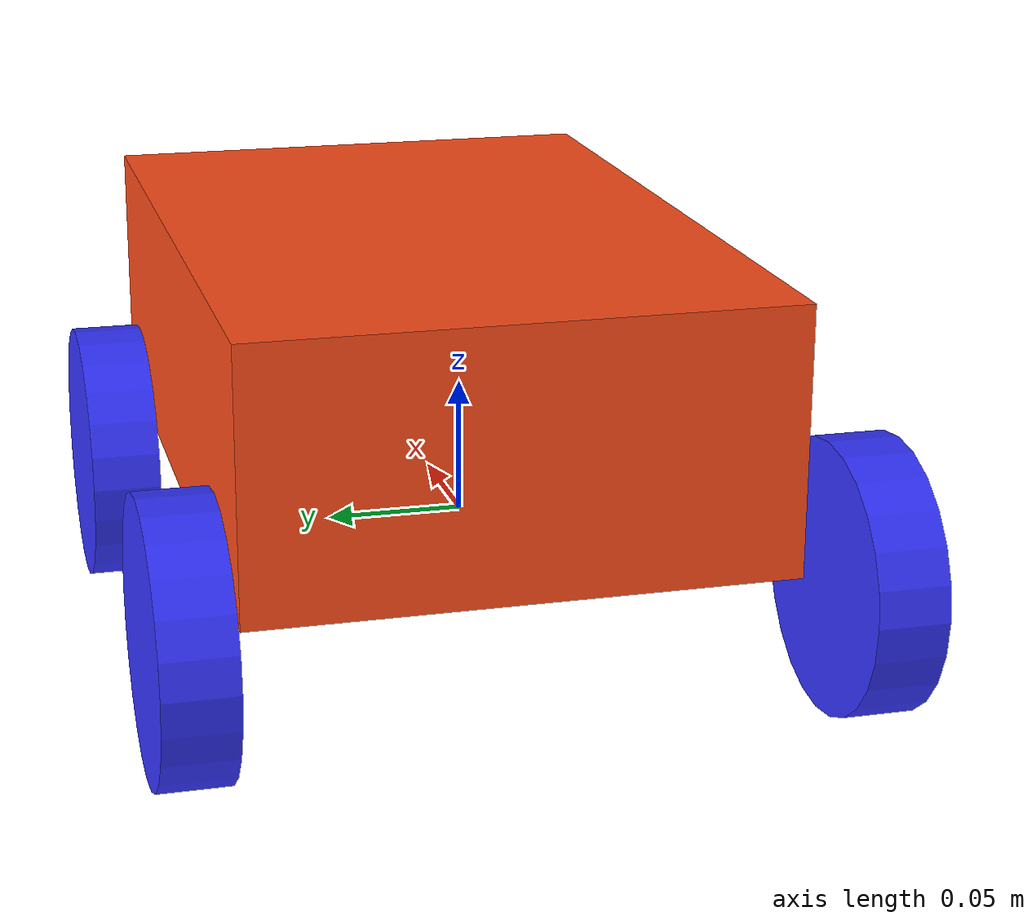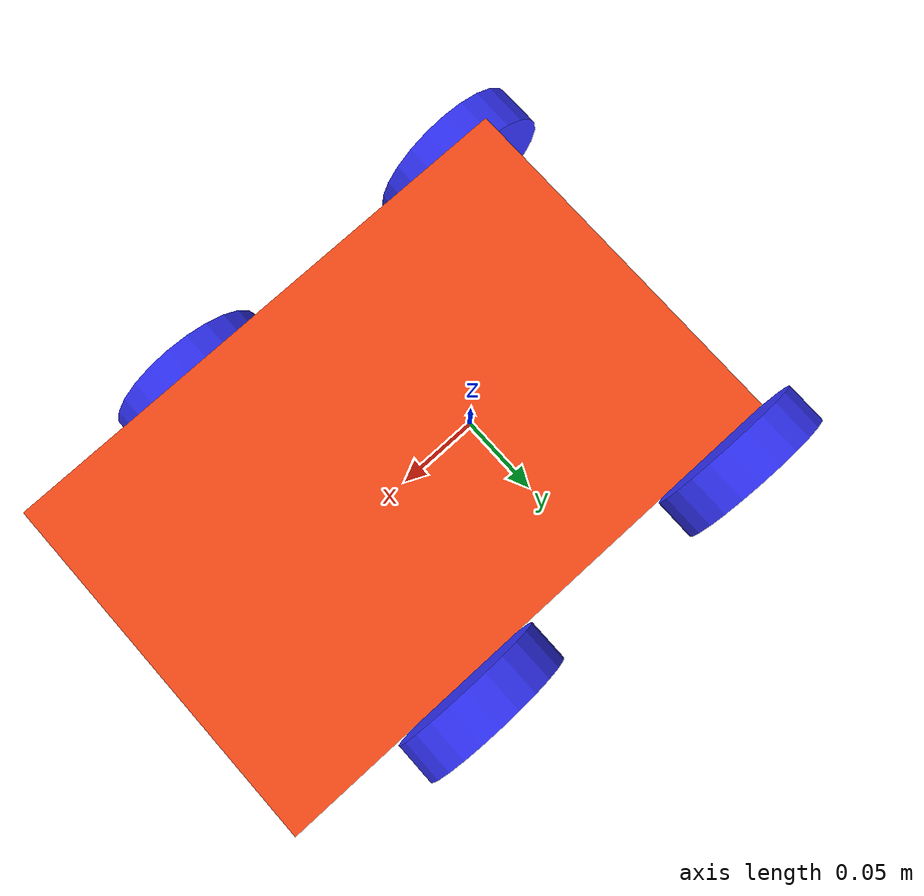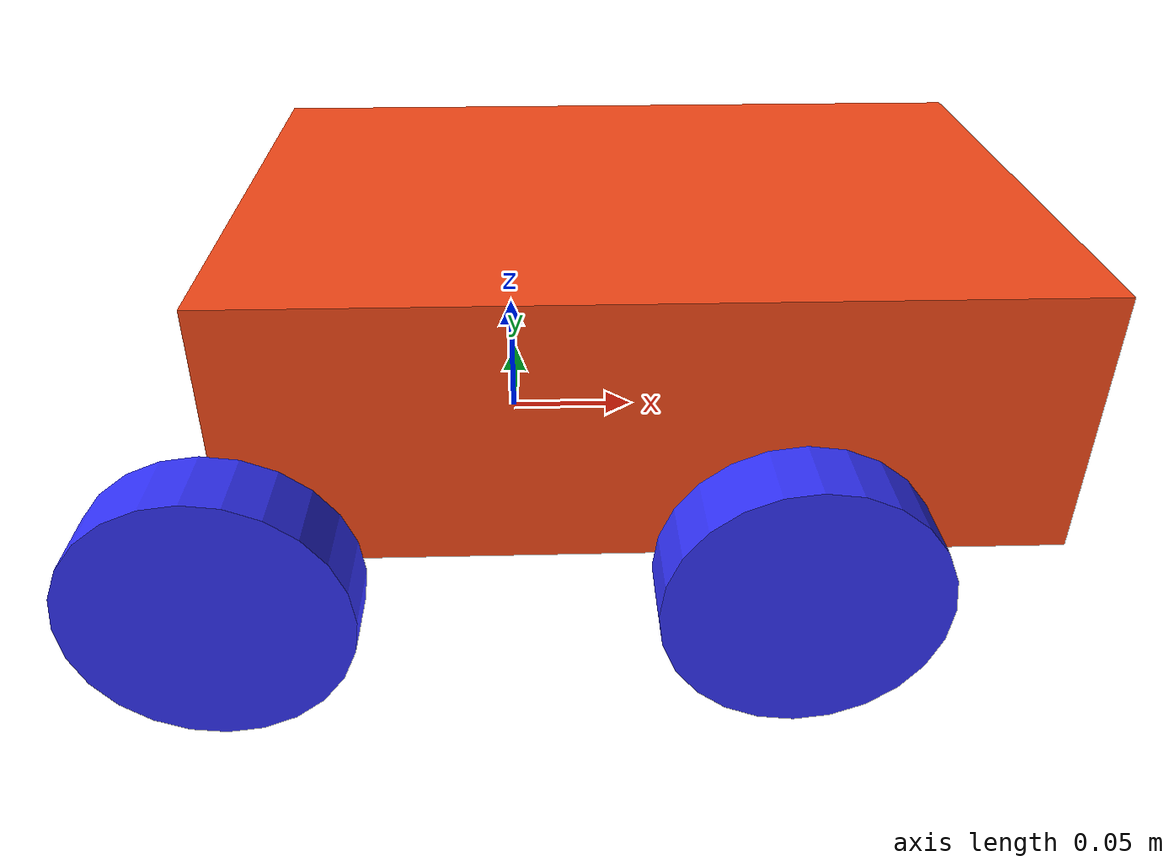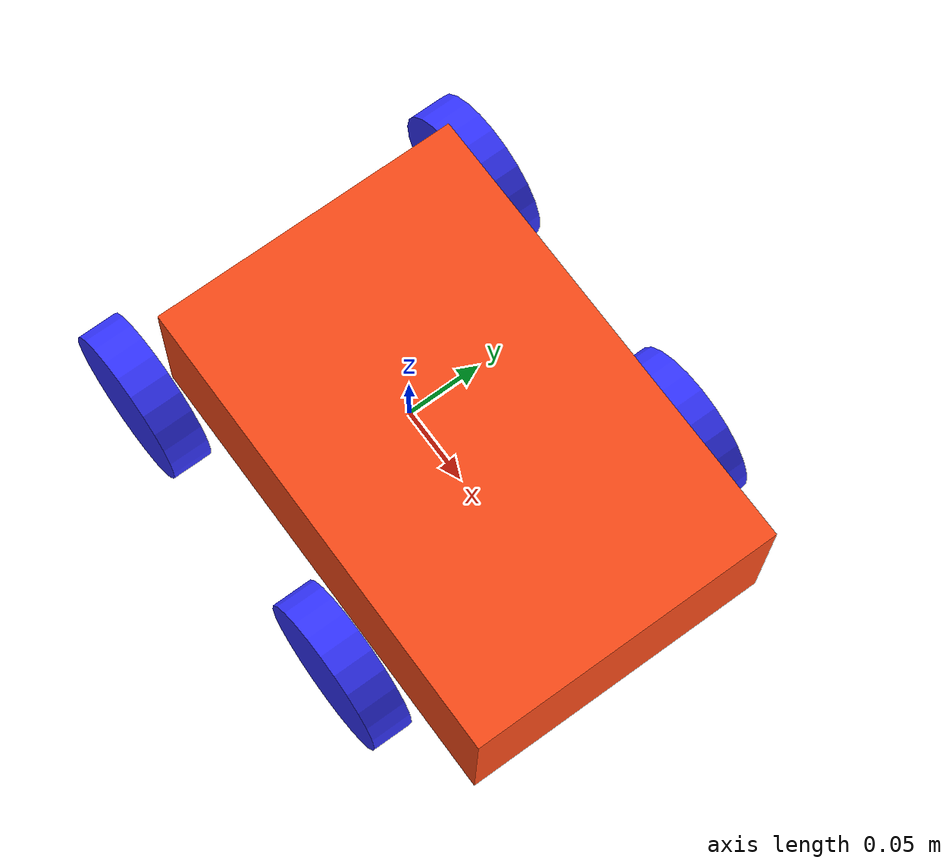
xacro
<?xml version="1.0"?>
<robot xmlns:xacro="http://www.ros.org/wiki/xacro"  name="robot">

    <xacro:property name="chassis_length" value="0.3"/>
    <xacro:property name="chassis_width" value="0.2"/>
    <xacro:property name="chassis_height" value="0.1"/>
    <xacro:property name="wheel_radius" value="0.05"/>
    <xacro:property name="wheel_thickness" value="0.026"/>
    <xacro:property name="wheel_offset_x" value="0.1"/>
    <xacro:property name="wheel_offset_y" value="0.12"/>
    <xacro:property name="wheel_offset_z" value="0.025"/>
    <xacro:property name="mass" value="1.0"/>

    <material name="white">
        <color rgba="1 1 1 1" />
    </material>

    <material name="orange">
        <color rgba="1 0.3 0.1 1"/>
    </material>

    <material name="blue">
        <color rgba="0.2 0.2 1 1"/>
    </material>

    <material name="black">
        <color rgba="0 0 0 1"/>
    </material>

    <!-- BASE LINK -->
    <link name="base_link">
    </link>

    <!-- CHASSIS LINK -->
    <joint name="chassis_joint" type="fixed">
        <parent link="base_link"/>
        <child link="chassis"/>
        <origin xyz="-0.1 0 0"/>
    </joint>

    <link name="chassis">
        <visual>
            <origin xyz="${chassis_length/2} 0 ${chassis_height/2}"/>
            <geometry>
                <box size="${chassis_length} ${chassis_width} ${chassis_height}"/>
            </geometry>
            <material name="orange"/>
        </visual>
        <collision>
            <origin xyz="${chassis_length/2} 0 ${chassis_height/2}"/>
            <geometry>
                <box size="${chassis_length} ${chassis_width} ${chassis_height}"/>
            </geometry>
        </collision>
        <inertial>
            <origin xyz="${chassis_length/2} 0 ${chassis_height/2}" rpy="0 0 0"/>
            <mass value="${mass}"/>
            <inertia ixx="${(1/12) * mass * (chassis_width*chassis_width + chassis_height*chassis_height)}" ixy="0.0" ixz="0.0"
                     iyy="${(1/12) * mass * (chassis_length*chassis_length + chassis_height*chassis_height)}" iyz="0.0"
                     izz="${(1/12) * mass * (chassis_length*chassis_length + chassis_width*chassis_width)}"/>
        </inertial>
    </link>

    <!-- WHEEL MACRO -->
    <xacro:macro name="wheel" params="prefix x_reflect y_reflect">
        <link name="${prefix}_wheel">
            <visual>
                <geometry>
                    <cylinder radius="${wheel_radius}" length="${wheel_thickness}"/>
                </geometry>
                <material name="blue"/>
            </visual>
            <collision>
                <geometry>
                    <cylinder radius="${wheel_radius}" length="${wheel_thickness}"/>
                </geometry>
            </collision>
            <inertial>
                <origin xyz="0 0 0" rpy="0 0 0"/>
                <mass value="0.1"/>
                <inertia ixx="${(1/12) * 0.1 * (3*wheel_radius*wheel_radius + wheel_thickness*wheel_thickness)}" ixy="0.0" ixz="0.0"
                         iyy="${(1/12) * 0.1 * (3*wheel_radius*wheel_radius + wheel_thickness*wheel_thickness)}" iyz="0.0"
                         izz="${(1/2) * 0.1 * (wheel_radius*wheel_radius)}"/>
            </inertial>
        </link>

        <joint name="${prefix}_wheel_joint" type="continuous">
            <parent link="base_link"/>
            <child link="${prefix}_wheel"/>
            <origin xyz="${x_reflect * wheel_offset_x} ${y_reflect * wheel_offset_y} 0" rpy="-${pi/2} 0 0"/>
            <axis xyz="0 0 1"/>
        </joint>
    </xacro:macro>

    <xacro:wheel prefix="front_left" x_reflect="1" y_reflect="1" />
    <xacro:wheel prefix="front_right" x_reflect="1" y_reflect="-1" />
    <xacro:wheel prefix="rear_left" x_reflect="-1" y_reflect="1" />
    <xacro:wheel prefix="rear_right" x_reflect="-1" y_reflect="-1" />

    <!-- GAZEBO PLUGIN -->
    <gazebo>
        <plugin filename="gz-sim-diff-drive-system" name="gz::sim::systems::DiffDrive">
            <!-- Left wheels -->
            <left_joint>front_left_wheel_joint</left_joint>
            <left_joint>rear_left_wheel_joint</left_joint>

            <!-- Right wheels -->
            <right_joint>front_right_wheel_joint</right_joint>
            <right_joint>rear_right_wheel_joint</right_joint>

            <wheel_separation>${wheel_offset_y * 2}</wheel_separation>
            <wheel_radius>${wheel_radius}</wheel_radius>
            <odom_publish_frequency>20</odom_publish_frequency>
            <topic>cmd_vel</topic>
            <odom_topic>odom</odom_topic>
            <frame_id>odom</frame_id>
            <child_frame_id>base_link</child_frame_id>
        </plugin>

        <plugin filename="gz-sim-joint-state-publisher-system" name="gz::sim::systems::JointStatePublisher">
            <topic>joint_states</topic>
            <joint_name>front_left_wheel_joint</joint_name>
            <joint_name>front_right_wheel_joint</joint_name>
            <joint_name>rear_left_wheel_joint</joint_name>
            <joint_name>rear_right_wheel_joint</joint_name>
        </plugin>
    </gazebo>

</robot>
